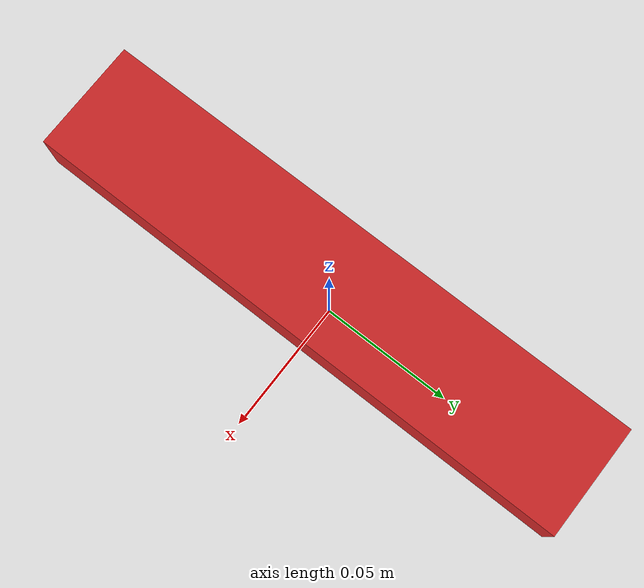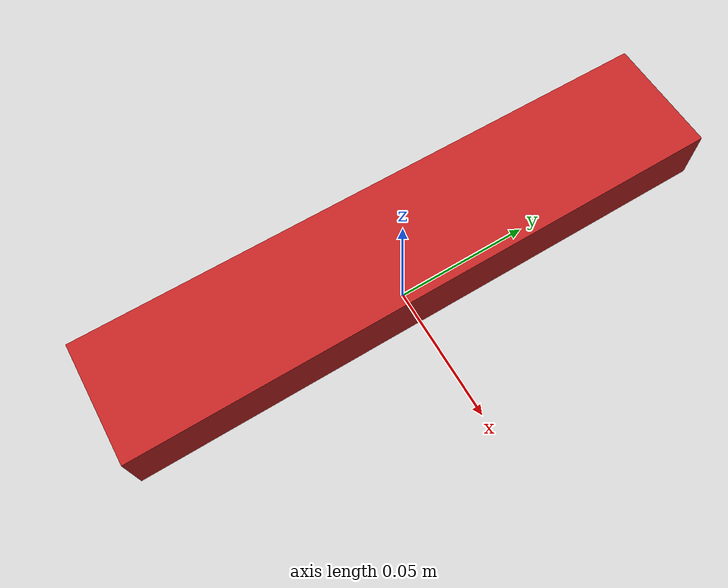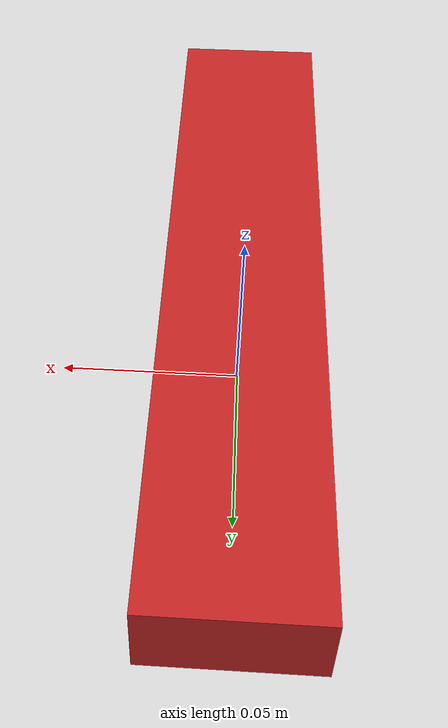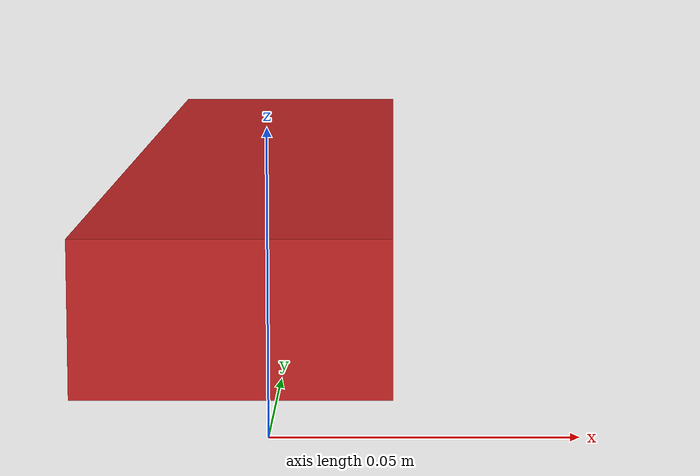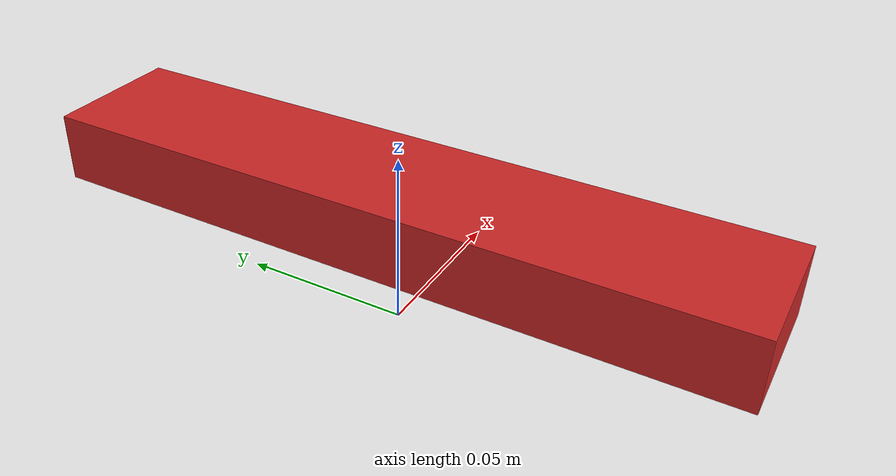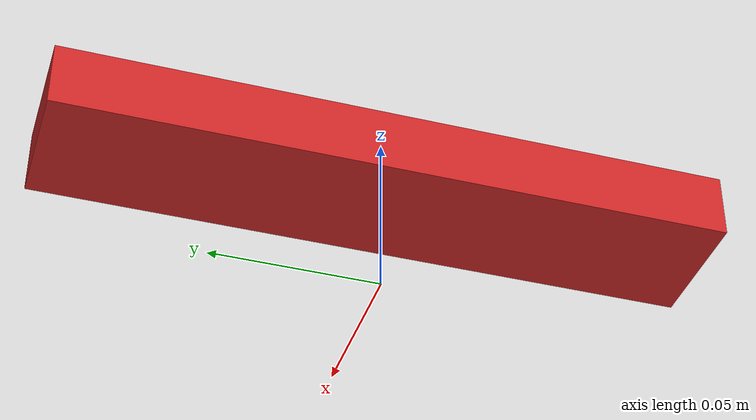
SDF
<?xml version="1.0"?>
<sdf version="1.5">
  <model name="stereo_be">
    <pose>0 0 0.036 0 0 0</pose>
    <link name="link">

      <inertial>
       <pose>0 0 0 0 0 0</pose>
        <mass>0.19</mass>
        <inertia>
          <ixx>4.15e-6</ixx>
          <ixy>0</ixy>
          <ixz>0</ixz>
          <iyy>2.407e-6</iyy>
          <iyz>0</iyz>
          <izz>2.407e-6</izz>
        </inertia>
      </inertial>

      <visual name="visual">
        <geometry>
          <box>
            <size>0.04 0.2 0.02</size>
          </box>
        </geometry>
        <material>
          <script>
            <name>Gazebo/Red</name>
            <uri>file://media/materials/scripts/gazebo.material</uri>
          </script>
        </material>
      </visual>

      <sensor type="multicamera" name="stereo_camera">
        <update_rate>30.0</update_rate>
        <visualize>true</visualize>
        <camera name="left">
          <!-- using ZED camera 110degrees WVGA -->
          <horizontal_fov>1.91986</horizontal_fov>
          <image>
            <width>1344</width>
            <height>376</height>
            <format>R8G8B8</format>
          </image>
          <clip>
            <near>0.02</near>
            <far>300</far>
          </clip>
          <noise>
            <type>gaussian</type>
            <mean>0.0</mean>
            <stddev>0.007</stddev>
          </noise>
        </camera>
        <camera name="right">
          <pose>0 -0.145 0 0 0 0</pose>
          <horizontal_fov>1.91986</horizontal_fov>
          <image>
            <width>1344</width>
            <height>376</height>
            <format>R8G8B8</format>
          </image>
          <clip>
            <near>0.02</near>
            <far>300</far>
          </clip>
          <noise>
            <type>gaussian</type>
            <mean>0.0</mean>
            <stddev>0.007</stddev>
          </noise>
        </camera>
        <plugin name="stereo_camera_controller" filename="libgazebo_ros_multicamera.so">
          <robotNamespace/>
          <alwaysOn>true</alwaysOn>
          <updateRate>0.0</updateRate>
          <cameraName>stereo</cameraName>
          <imageTopicName>image_raw</imageTopicName>
          <cameraInfoTopicName>camera_info</cameraInfoTopicName>
          <frameName>left_camera_optical_frame</frameName>
          <hackBaseline>0.07</hackBaseline>
          <distortionK1>0.0</distortionK1>
          <distortionK2>0.0</distortionK2>
          <distortionK3>0.0</distortionK3>
          <distortionT1>0.0</distortionT1>
          <distortionT2>0.0</distortionT2>
        </plugin>
      </sensor>

    </link>
  </model>
</sdf>
